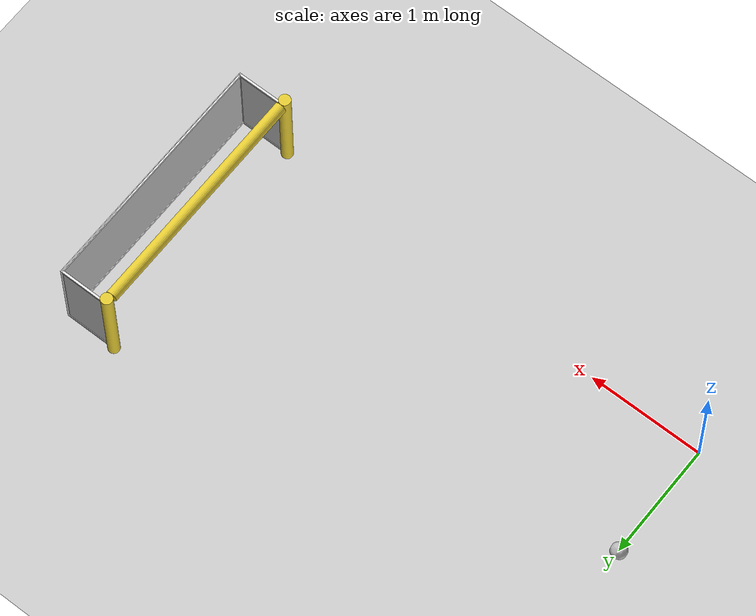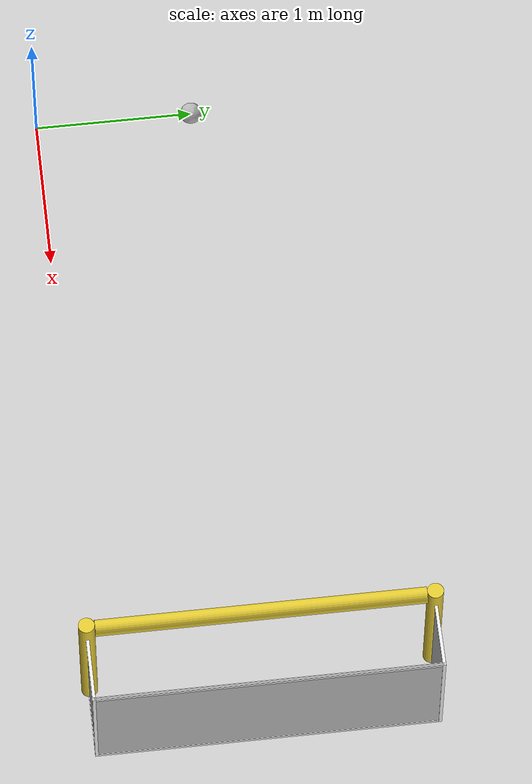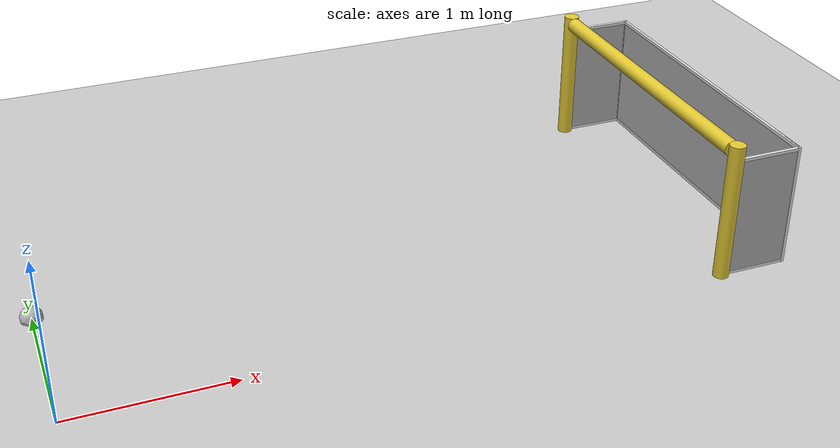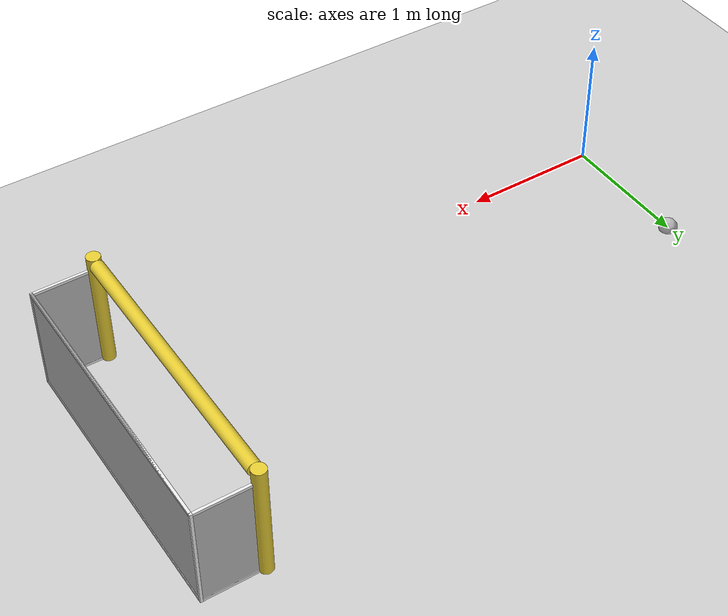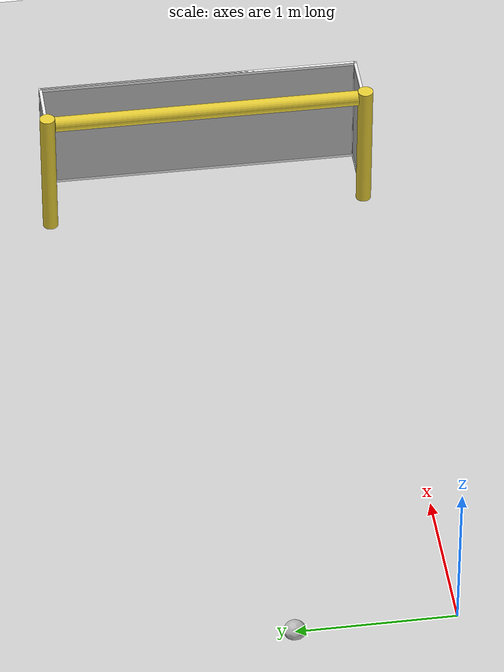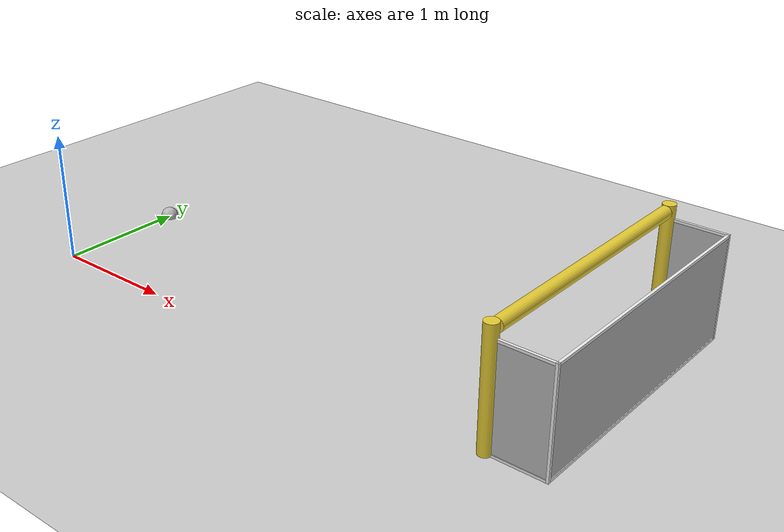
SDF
<sdf version="1.4">
 <world name="default">
  <model name="ground_plane">
   <static>1</static>
   <link name="link">
    <collision name="collision">
     <geometry><plane><normal>0 0 1</normal><size>100 100</size></plane></geometry>
     <surface><friction><ode><mu>100</mu><mu2>50</mu2></ode></friction></surface>
    </collision>
    <visual name="visual">
     <cast_shadows>0</cast_shadows>
     <geometry><plane><normal>0 0 1</normal><size>100 100</size></plane></geometry>
     <material>
      <script><uri>file://media/materials/scripts/gazebo.material</uri><name>Gazebo/Grey</name></script>
     </material>
    </visual>
    <velocity_decay><linear>0</linear><angular>0</angular></velocity_decay>
   </link>
  </model>
  <model name="RoboCup_3D_Simulator_Goal_1">
   <pose>4 1 0 0 -0 0</pose>
   <link name="left_post">
    <pose>0 1.05 0.45 0 -0 0</pose>
    <velocity_decay><linear>0</linear><angular>0</angular></velocity_decay>
    <visual name="visual">
     <geometry><cylinder><radius>0.05</radius><length>0.9</length></cylinder></geometry>
     <material>
      <script><uri>file://media/materials/scripts/gazebo.material</uri><name>Gazebo/ZincYellow</name></script>
      <shader type="pixel"/>
     </material>
    </visual>
    <collision name="collision">
     <geometry><cylinder><radius>0.05</radius><length>0.9</length></cylinder></geometry>
     <surface>
      <friction>
       <ode><mu>1</mu><mu2>1</mu2><fdir1>0 0 0</fdir1><slip1>0</slip1><slip2>0</slip2></ode>
       <torsional>
        <coefficient>1</coefficient>
        <patch_radius>0</patch_radius>
        <surface_radius>0</surface_radius>
        <use_patch_radius>1</use_patch_radius>
        <ode><slip>0</slip></ode>
       </torsional>
      </friction>
      <bounce><restitution_coefficient>0</restitution_coefficient><threshold>1e+06</threshold></bounce>
      <contact>
       <collide_without_contact>0</collide_without_contact>
       <collide_without_contact_bitmask>1</collide_without_contact_bitmask>
       <collide_bitmask>1</collide_bitmask>
       <ode>
        <soft_cfm>0</soft_cfm>
        <soft_erp>0.2</soft_erp>
        <kp>1e+13</kp>
        <kd>1</kd>
        <max_vel>0.01</max_vel>
        <min_depth>0</min_depth>
       </ode>
       <bullet>
        <split_impulse>1</split_impulse>
        <split_impulse_penetration_threshold>-0.01</split_impulse_penetration_threshold>
        <soft_cfm>0</soft_cfm>
        <soft_erp>0.2</soft_erp>
        <kp>1e+13</kp>
        <kd>1</kd>
       </bullet>
      </contact>
     </surface>
    </collision>
   </link>
   <link name="center_net">
    <pose>0.44 0 0.4 0 -0 0</pose>
    <velocity_decay><linear>0</linear><angular>0</angular></velocity_decay>
    <visual name="visual">
     <geometry><box><size>0.01 2.1 0.8</size></box></geometry>
     <material>
      <script>
       <uri>model://robocup09_spl_field/materials/scripts/</uri>
       <uri>model://robocup09_spl_field/materials/textures/</uri>
       <name>RoboCup/Net</name>
      </script>
      <shader type="pixel"/>
     </material>
    </visual>
    <collision name="collision">
     <geometry><box><size>0.01 2.1 0.8</size></box></geometry>
     <surface>
      <friction>
       <ode><mu>1</mu><mu2>1</mu2><fdir1>0 0 0</fdir1><slip1>0</slip1><slip2>0</slip2></ode>
       <torsional>
        <coefficient>1</coefficient>
        <patch_radius>0</patch_radius>
        <surface_radius>0</surface_radius>
        <use_patch_radius>1</use_patch_radius>
        <ode><slip>0</slip></ode>
       </torsional>
      </friction>
      <bounce><restitution_coefficient>0</restitution_coefficient><threshold>1e+06</threshold></bounce>
      <contact>
       <collide_without_contact>0</collide_without_contact>
       <collide_without_contact_bitmask>1</collide_without_contact_bitmask>
       <collide_bitmask>1</collide_bitmask>
       <ode>
        <soft_cfm>0</soft_cfm>
        <soft_erp>0.2</soft_erp>
        <kp>1e+13</kp>
        <kd>1</kd>
        <max_vel>0.01</max_vel>
        <min_depth>0</min_depth>
       </ode>
       <bullet>
        <split_impulse>1</split_impulse>
        <split_impulse_penetration_threshold>-0.01</split_impulse_penetration_threshold>
        <soft_cfm>0</soft_cfm>
        <soft_erp>0.2</soft_erp>
        <kp>1e+13</kp>
        <kd>1</kd>
       </bullet>
      </contact>
     </surface>
    </collision>
   </link>
   <link name="center_support_horiz_lower">
    <pose>0.44 0 0.01 3.14159 1.57079 3.14159</pose>
    <velocity_decay><linear>0</linear><angular>0</angular></velocity_decay>
    <visual name="visual">
     <geometry><box><size>0.02 2.08 0.02</size></box></geometry>
     <material>
      <script><uri>file://media/materials/scripts/gazebo.material</uri><name>Gazebo/White</name></script>
      <shader type="pixel"/>
     </material>
    </visual>
    <collision name="collision">
     <geometry><box><size>0.02 2.08 0.02</size></box></geometry>
     <surface>
      <friction>
       <ode><mu>1</mu><mu2>1</mu2><fdir1>0 0 0</fdir1><slip1>0</slip1><slip2>0</slip2></ode>
       <torsional>
        <coefficient>1</coefficient>
        <patch_radius>0</patch_radius>
        <surface_radius>0</surface_radius>
        <use_patch_radius>1</use_patch_radius>
        <ode><slip>0</slip></ode>
       </torsional>
      </friction>
      <bounce><restitution_coefficient>0</restitution_coefficient><threshold>1e+06</threshold></bounce>
      <contact>
       <collide_without_contact>0</collide_without_contact>
       <collide_without_contact_bitmask>1</collide_without_contact_bitmask>
       <collide_bitmask>1</collide_bitmask>
       <ode>
        <soft_cfm>0</soft_cfm>
        <soft_erp>0.2</soft_erp>
        <kp>1e+13</kp>
        <kd>1</kd>
        <max_vel>0.01</max_vel>
        <min_depth>0</min_depth>
       </ode>
       <bullet>
        <split_impulse>1</split_impulse>
        <split_impulse_penetration_threshold>-0.01</split_impulse_penetration_threshold>
        <soft_cfm>0</soft_cfm>
        <soft_erp>0.2</soft_erp>
        <kp>1e+13</kp>
        <kd>1</kd>
       </bullet>
      </contact>
     </surface>
    </collision>
   </link>
   <link name="center_support_horiz_upper">
    <pose>0.44 0 0.79 3.14159 1.57079 3.14159</pose>
    <velocity_decay><linear>0</linear><angular>0</angular></velocity_decay>
    <visual name="visual">
     <geometry><box><size>0.02 2.08 0.02</size></box></geometry>
     <material>
      <script><uri>file://media/materials/scripts/gazebo.material</uri><name>Gazebo/White</name></script>
      <shader type="pixel"/>
     </material>
    </visual>
    <collision name="collision">
     <geometry><box><size>0.02 2.08 0.02</size></box></geometry>
     <surface>
      <friction>
       <ode><mu>1</mu><mu2>1</mu2><fdir1>0 0 0</fdir1><slip1>0</slip1><slip2>0</slip2></ode>
       <torsional>
        <coefficient>1</coefficient>
        <patch_radius>0</patch_radius>
        <surface_radius>0</surface_radius>
        <use_patch_radius>1</use_patch_radius>
        <ode><slip>0</slip></ode>
       </torsional>
      </friction>
      <bounce><restitution_coefficient>0</restitution_coefficient><threshold>1e+06</threshold></bounce>
      <contact>
       <collide_without_contact>0</collide_without_contact>
       <collide_without_contact_bitmask>1</collide_without_contact_bitmask>
       <collide_bitmask>1</collide_bitmask>
       <ode>
        <soft_cfm>0</soft_cfm>
        <soft_erp>0.2</soft_erp>
        <kp>1e+13</kp>
        <kd>1</kd>
        <max_vel>0.01</max_vel>
        <min_depth>0</min_depth>
       </ode>
       <bullet>
        <split_impulse>1</split_impulse>
        <split_impulse_penetration_threshold>-0.01</split_impulse_penetration_threshold>
        <soft_cfm>0</soft_cfm>
        <soft_erp>0.2</soft_erp>
        <kp>1e+13</kp>
        <kd>1</kd>
       </bullet>
      </contact>
     </surface>
    </collision>
   </link>
   <link name="crossbar">
    <pose>0 0 0.85 1.57002 1.57 2.4e-05</pose>
    <velocity_decay><linear>0</linear><angular>0</angular></velocity_decay>
    <visual name="visual">
     <geometry><cylinder><radius>0.05</radius><length>2</length></cylinder></geometry>
     <material>
      <script><uri>file://media/materials/scripts/gazebo.material</uri><name>Gazebo/ZincYellow</name></script>
      <shader type="pixel"/>
     </material>
    </visual>
    <collision name="collision">
     <geometry><cylinder><radius>0.05</radius><length>2</length></cylinder></geometry>
     <surface>
      <friction>
       <ode><mu>1</mu><mu2>1</mu2><fdir1>0 0 0</fdir1><slip1>0</slip1><slip2>0</slip2></ode>
       <torsional>
        <coefficient>1</coefficient>
        <patch_radius>0</patch_radius>
        <surface_radius>0</surface_radius>
        <use_patch_radius>1</use_patch_radius>
        <ode><slip>0</slip></ode>
       </torsional>
      </friction>
      <bounce><restitution_coefficient>0</restitution_coefficient><threshold>1e+06</threshold></bounce>
      <contact>
       <collide_without_contact>0</collide_without_contact>
       <collide_without_contact_bitmask>1</collide_without_contact_bitmask>
       <collide_bitmask>1</collide_bitmask>
       <ode>
        <soft_cfm>0</soft_cfm>
        <soft_erp>0.2</soft_erp>
        <kp>1e+13</kp>
        <kd>1</kd>
        <max_vel>0.01</max_vel>
        <min_depth>0</min_depth>
       </ode>
       <bullet>
        <split_impulse>1</split_impulse>
        <split_impulse_penetration_threshold>-0.01</split_impulse_penetration_threshold>
        <soft_cfm>0</soft_cfm>
        <soft_erp>0.2</soft_erp>
        <kp>1e+13</kp>
        <kd>1</kd>
       </bullet>
      </contact>
     </surface>
    </collision>
   </link>
   <link name="left_net">
    <pose>0.24 1.05 0.4 0 -0 0</pose>
    <velocity_decay><linear>0</linear><angular>0</angular></velocity_decay>
    <visual name="visual">
     <geometry><box><size>0.38 0.01 0.76</size></box></geometry>
     <material>
      <script>
       <uri>model://robocup09_spl_field/materials/scripts/</uri>
       <uri>model://robocup09_spl_field/materials/textures/</uri>
       <name>RoboCup/Net</name>
      </script>
      <shader type="pixel"/>
     </material>
    </visual>
    <collision name="collision">
     <geometry><box><size>0.38 0.01 0.76</size></box></geometry>
     <surface>
      <friction>
       <ode><mu>1</mu><mu2>1</mu2><fdir1>0 0 0</fdir1><slip1>0</slip1><slip2>0</slip2></ode>
       <torsional>
        <coefficient>1</coefficient>
        <patch_radius>0</patch_radius>
        <surface_radius>0</surface_radius>
        <use_patch_radius>1</use_patch_radius>
        <ode><slip>0</slip></ode>
       </torsional>
      </friction>
      <bounce><restitution_coefficient>0</restitution_coefficient><threshold>1e+06</threshold></bounce>
      <contact>
       <collide_without_contact>0</collide_without_contact>
       <collide_without_contact_bitmask>1</collide_without_contact_bitmask>
       <collide_bitmask>1</collide_bitmask>
       <ode>
        <soft_cfm>0</soft_cfm>
        <soft_erp>0.2</soft_erp>
        <kp>1e+13</kp>
        <kd>1</kd>
        <max_vel>0.01</max_vel>
        <min_depth>0</min_depth>
       </ode>
       <bullet>
        <split_impulse>1</split_impulse>
        <split_impulse_penetration_threshold>-0.01</split_impulse_penetration_threshold>
        <soft_cfm>0</soft_cfm>
        <soft_erp>0.2</soft_erp>
        <kp>1e+13</kp>
        <kd>1</kd>
       </bullet>
      </contact>
     </surface>
    </collision>
   </link>
   <link name="left_support_horiz_lower">
    <pose>0.24 1.05 0.01 0 -0 0</pose>
    <velocity_decay><linear>0</linear><angular>0</angular></velocity_decay>
    <visual name="visual">
     <geometry><box><size>0.38 0.02 0.02</size></box></geometry>
     <material>
      <script><uri>file://media/materials/scripts/gazebo.material</uri><name>Gazebo/White</name></script>
      <shader type="pixel"/>
     </material>
    </visual>
    <collision name="collision">
     <geometry><box><size>0.38 0.02 0.02</size></box></geometry>
     <surface>
      <friction>
       <ode><mu>1</mu><mu2>1</mu2><fdir1>0 0 0</fdir1><slip1>0</slip1><slip2>0</slip2></ode>
       <torsional>
        <coefficient>1</coefficient>
        <patch_radius>0</patch_radius>
        <surface_radius>0</surface_radius>
        <use_patch_radius>1</use_patch_radius>
        <ode><slip>0</slip></ode>
       </torsional>
      </friction>
      <bounce><restitution_coefficient>0</restitution_coefficient><threshold>1e+06</threshold></bounce>
      <contact>
       <collide_without_contact>0</collide_without_contact>
       <collide_without_contact_bitmask>1</collide_without_contact_bitmask>
       <collide_bitmask>1</collide_bitmask>
       <ode>
        <soft_cfm>0</soft_cfm>
        <soft_erp>0.2</soft_erp>
        <kp>1e+13</kp>
        <kd>1</kd>
        <max_vel>0.01</max_vel>
        <min_depth>0</min_depth>
       </ode>
       <bullet>
        <split_impulse>1</split_impulse>
        <split_impulse_penetration_threshold>-0.01</split_impulse_penetration_threshold>
        <soft_cfm>0</soft_cfm>
        <soft_erp>0.2</soft_erp>
        <kp>1e+13</kp>
        <kd>1</kd>
       </bullet>
      </contact>
     </surface>
    </collision>
   </link>
   <link name="left_support_horiz_upper">
    <pose>0.24 1.05 0.79 0 -0 0</pose>
    <velocity_decay><linear>0</linear><angular>0</angular></velocity_decay>
    <visual name="visual">
     <geometry><box><size>0.38 0.02 0.02</size></box></geometry>
     <material>
      <script><uri>file://media/materials/scripts/gazebo.material</uri><name>Gazebo/White</name></script>
      <shader type="pixel"/>
     </material>
    </visual>
    <collision name="collision">
     <geometry><box><size>0.38 0.02 0.02</size></box></geometry>
     <surface>
      <friction>
       <ode><mu>1</mu><mu2>1</mu2><fdir1>0 0 0</fdir1><slip1>0</slip1><slip2>0</slip2></ode>
       <torsional>
        <coefficient>1</coefficient>
        <patch_radius>0</patch_radius>
        <surface_radius>0</surface_radius>
        <use_patch_radius>1</use_patch_radius>
        <ode><slip>0</slip></ode>
       </torsional>
      </friction>
      <bounce><restitution_coefficient>0</restitution_coefficient><threshold>1e+06</threshold></bounce>
      <contact>
       <collide_without_contact>0</collide_without_contact>
       <collide_without_contact_bitmask>1</collide_without_contact_bitmask>
       <collide_bitmask>1</collide_bitmask>
       <ode>
        <soft_cfm>0</soft_cfm>
        <soft_erp>0.2</soft_erp>
        <kp>1e+13</kp>
        <kd>1</kd>
        <max_vel>0.01</max_vel>
        <min_depth>0</min_depth>
       </ode>
       <bullet>
        <split_impulse>1</split_impulse>
        <split_impulse_penetration_threshold>-0.01</split_impulse_penetration_threshold>
        <soft_cfm>0</soft_cfm>
        <soft_erp>0.2</soft_erp>
        <kp>1e+13</kp>
        <kd>1</kd>
       </bullet>
      </contact>
     </surface>
    </collision>
   </link>
   <link name="left_support_vertical">
    <pose>0.44 1.05 0.4 3.14159 1.57079 3.14159</pose>
    <velocity_decay><linear>0</linear><angular>0</angular></velocity_decay>
    <visual name="visual">
     <geometry><box><size>0.8 0.02 0.02</size></box></geometry>
     <material>
      <script><uri>file://media/materials/scripts/gazebo.material</uri><name>Gazebo/White</name></script>
      <shader type="pixel"/>
     </material>
    </visual>
    <collision name="collision">
     <geometry><box><size>0.8 0.02 0.02</size></box></geometry>
     <surface>
      <friction>
       <ode><mu>1</mu><mu2>1</mu2><fdir1>0 0 0</fdir1><slip1>0</slip1><slip2>0</slip2></ode>
       <torsional>
        <coefficient>1</coefficient>
        <patch_radius>0</patch_radius>
        <surface_radius>0</surface_radius>
        <use_patch_radius>1</use_patch_radius>
        <ode><slip>0</slip></ode>
       </torsional>
      </friction>
      <bounce><restitution_coefficient>0</restitution_coefficient><threshold>1e+06</threshold></bounce>
      <contact>
       <collide_without_contact>0</collide_without_contact>
       <collide_without_contact_bitmask>1</collide_without_contact_bitmask>
       <collide_bitmask>1</collide_bitmask>
       <ode>
        <soft_cfm>0</soft_cfm>
        <soft_erp>0.2</soft_erp>
        <kp>1e+13</kp>
        <kd>1</kd>
        <max_vel>0.01</max_vel>
        <min_depth>0</min_depth>
       </ode>
       <bullet>
        <split_impulse>1</split_impulse>
        <split_impulse_penetration_threshold>-0.01</split_impulse_penetration_threshold>
        <soft_cfm>0</soft_cfm>
        <soft_erp>0.2</soft_erp>
        <kp>1e+13</kp>
        <kd>1</kd>
       </bullet>
      </contact>
     </surface>
    </collision>
   </link>
   <link name="right_net">
    <pose>0.24 -1.05 0.4 0 -0 0</pose>
    <velocity_decay><linear>0</linear><angular>0</angular></velocity_decay>
    <visual name="visual">
     <geometry><box><size>0.38 0.01 0.76</size></box></geometry>
     <material>
      <script>
       <uri>model://robocup09_spl_field/materials/scripts/</uri>
       <uri>model://robocup09_spl_field/materials/textures/</uri>
       <name>RoboCup/Net</name>
      </script>
      <shader type="pixel"/>
     </material>
    </visual>
    <collision name="collision">
     <geometry><box><size>0.38 0.01 0.76</size></box></geometry>
     <surface>
      <friction>
       <ode><mu>1</mu><mu2>1</mu2><fdir1>0 0 0</fdir1><slip1>0</slip1><slip2>0</slip2></ode>
       <torsional>
        <coefficient>1</coefficient>
        <patch_radius>0</patch_radius>
        <surface_radius>0</surface_radius>
        <use_patch_radius>1</use_patch_radius>
        <ode><slip>0</slip></ode>
       </torsional>
      </friction>
      <bounce><restitution_coefficient>0</restitution_coefficient><threshold>1e+06</threshold></bounce>
      <contact>
       <collide_without_contact>0</collide_without_contact>
       <collide_without_contact_bitmask>1</collide_without_contact_bitmask>
       <collide_bitmask>1</collide_bitmask>
       <ode>
        <soft_cfm>0</soft_cfm>
        <soft_erp>0.2</soft_erp>
        <kp>1e+13</kp>
        <kd>1</kd>
        <max_vel>0.01</max_vel>
        <min_depth>0</min_depth>
       </ode>
       <bullet>
        <split_impulse>1</split_impulse>
        <split_impulse_penetration_threshold>-0.01</split_impulse_penetration_threshold>
        <soft_cfm>0</soft_cfm>
        <soft_erp>0.2</soft_erp>
        <kp>1e+13</kp>
        <kd>1</kd>
       </bullet>
      </contact>
     </surface>
    </collision>
   </link>
   <link name="right_post">
    <pose>0 -1.05 0.45 0 -0 0</pose>
    <velocity_decay><linear>0</linear><angular>0</angular></velocity_decay>
    <visual name="visual">
     <geometry><cylinder><radius>0.05</radius><length>0.9</length></cylinder></geometry>
     <material>
      <script><uri>file://media/materials/scripts/gazebo.material</uri><name>Gazebo/ZincYellow</name></script>
      <shader type="pixel"/>
     </material>
    </visual>
    <collision name="collision">
     <geometry><cylinder><radius>0.05</radius><length>0.9</length></cylinder></geometry>
     <surface>
      <friction>
       <ode><mu>1</mu><mu2>1</mu2><fdir1>0 0 0</fdir1><slip1>0</slip1><slip2>0</slip2></ode>
       <torsional>
        <coefficient>1</coefficient>
        <patch_radius>0</patch_radius>
        <surface_radius>0</surface_radius>
        <use_patch_radius>1</use_patch_radius>
        <ode><slip>0</slip></ode>
       </torsional>
      </friction>
      <bounce><restitution_coefficient>0</restitution_coefficient><threshold>1e+06</threshold></bounce>
      <contact>
       <collide_without_contact>0</collide_without_contact>
       <collide_without_contact_bitmask>1</collide_without_contact_bitmask>
       <collide_bitmask>1</collide_bitmask>
       <ode>
        <soft_cfm>0</soft_cfm>
        <soft_erp>0.2</soft_erp>
        <kp>1e+13</kp>
        <kd>1</kd>
        <max_vel>0.01</max_vel>
        <min_depth>0</min_depth>
       </ode>
       <bullet>
        <split_impulse>1</split_impulse>
        <split_impulse_penetration_threshold>-0.01</split_impulse_penetration_threshold>
        <soft_cfm>0</soft_cfm>
        <soft_erp>0.2</soft_erp>
        <kp>1e+13</kp>
        <kd>1</kd>
       </bullet>
      </contact>
     </surface>
    </collision>
   </link>
   <link name="right_support_horiz_lower">
    <pose>0.24 -1.05 0.01 0 -0 0</pose>
    <velocity_decay><linear>0</linear><angular>0</angular></velocity_decay>
    <visual name="visual">
     <geometry><box><size>0.38 0.02 0.02</size></box></geometry>
     <material>
      <script><uri>file://media/materials/scripts/gazebo.material</uri><name>Gazebo/White</name></script>
      <shader type="pixel"/>
     </material>
    </visual>
    <collision name="collision">
     <geometry><box><size>0.38 0.02 0.02</size></box></geometry>
     <surface>
      <friction>
       <ode><mu>1</mu><mu2>1</mu2><fdir1>0 0 0</fdir1><slip1>0</slip1><slip2>0</slip2></ode>
       <torsional>
        <coefficient>1</coefficient>
        <patch_radius>0</patch_radius>
        <surface_radius>0</surface_radius>
        <use_patch_radius>1</use_patch_radius>
        <ode><slip>0</slip></ode>
       </torsional>
      </friction>
      <bounce><restitution_coefficient>0</restitution_coefficient><threshold>1e+06</threshold></bounce>
      <contact>
       <collide_without_contact>0</collide_without_contact>
       <collide_without_contact_bitmask>1</collide_without_contact_bitmask>
       <collide_bitmask>1</collide_bitmask>
       <ode>
        <soft_cfm>0</soft_cfm>
        <soft_erp>0.2</soft_erp>
        <kp>1e+13</kp>
        <kd>1</kd>
        <max_vel>0.01</max_vel>
        <min_depth>0</min_depth>
       </ode>
       <bullet>
        <split_impulse>1</split_impulse>
        <split_impulse_penetration_threshold>-0.01</split_impulse_penetration_threshold>
        <soft_cfm>0</soft_cfm>
        <soft_erp>0.2</soft_erp>
        <kp>1e+13</kp>
        <kd>1</kd>
       </bullet>
      </contact>
     </surface>
    </collision>
   </link>
   <link name="right_support_horiz_upper">
    <pose>0.24 -1.05 0.79 0 -0 0</pose>
    <velocity_decay><linear>0</linear><angular>0</angular></velocity_decay>
    <visual name="visual">
     <geometry><box><size>0.38 0.02 0.02</size></box></geometry>
     <material>
      <script><uri>file://media/materials/scripts/gazebo.material</uri><name>Gazebo/White</name></script>
      <shader type="pixel"/>
     </material>
    </visual>
    <collision name="collision">
     <geometry><box><size>0.38 0.02 0.02</size></box></geometry>
     <surface>
      <friction>
       <ode><mu>1</mu><mu2>1</mu2><fdir1>0 0 0</fdir1><slip1>0</slip1><slip2>0</slip2></ode>
       <torsional>
        <coefficient>1</coefficient>
        <patch_radius>0</patch_radius>
        <surface_radius>0</surface_radius>
        <use_patch_radius>1</use_patch_radius>
        <ode><slip>0</slip></ode>
       </torsional>
      </friction>
      <bounce><restitution_coefficient>0</restitution_coefficient><threshold>1e+06</threshold></bounce>
      <contact>
       <collide_without_contact>0</collide_without_contact>
       <collide_without_contact_bitmask>1</collide_without_contact_bitmask>
       <collide_bitmask>1</collide_bitmask>
       <ode>
        <soft_cfm>0</soft_cfm>
        <soft_erp>0.2</soft_erp>
        <kp>1e+13</kp>
        <kd>1</kd>
        <max_vel>0.01</max_vel>
        <min_depth>0</min_depth>
       </ode>
       <bullet>
        <split_impulse>1</split_impulse>
        <split_impulse_penetration_threshold>-0.01</split_impulse_penetration_threshold>
        <soft_cfm>0</soft_cfm>
        <soft_erp>0.2</soft_erp>
        <kp>1e+13</kp>
        <kd>1</kd>
       </bullet>
      </contact>
     </surface>
    </collision>
   </link>
   <link name="right_support_vertical">
    <pose>0.44 -1.05 0.4 3.14159 1.57079 3.14159</pose>
    <velocity_decay><linear>0</linear><angular>0</angular></velocity_decay>
    <visual name="visual">
     <geometry><box><size>0.8 0.02 0.02</size></box></geometry>
     <material>
      <script><uri>file://media/materials/scripts/gazebo.material</uri><name>Gazebo/White</name></script>
      <shader type="pixel"/>
     </material>
    </visual>
    <collision name="collision">
     <geometry><box><size>0.8 0.02 0.02</size></box></geometry>
     <surface>
      <friction>
       <ode><mu>1</mu><mu2>1</mu2><fdir1>0 0 0</fdir1><slip1>0</slip1><slip2>0</slip2></ode>
       <torsional>
        <coefficient>1</coefficient>
        <patch_radius>0</patch_radius>
        <surface_radius>0</surface_radius>
        <use_patch_radius>1</use_patch_radius>
        <ode><slip>0</slip></ode>
       </torsional>
      </friction>
      <bounce><restitution_coefficient>0</restitution_coefficient><threshold>1e+06</threshold></bounce>
      <contact>
       <collide_without_contact>0</collide_without_contact>
       <collide_without_contact_bitmask>1</collide_without_contact_bitmask>
       <collide_bitmask>1</collide_bitmask>
       <ode>
        <soft_cfm>0</soft_cfm>
        <soft_erp>0.2</soft_erp>
        <kp>1e+13</kp>
        <kd>1</kd>
        <max_vel>0.01</max_vel>
        <min_depth>0</min_depth>
       </ode>
       <bullet>
        <split_impulse>1</split_impulse>
        <split_impulse_penetration_threshold>-0.01</split_impulse_penetration_threshold>
        <soft_cfm>0</soft_cfm>
        <soft_erp>0.2</soft_erp>
        <kp>1e+13</kp>
        <kd>1</kd>
       </bullet>
      </contact>
     </surface>
    </collision>
   </link>
   <static>1</static>
  </model>
  <model name="transparent_wall_2">
   <pose>-0.7 4.1 0 0 0 0</pose>
   <link name="link">
    <pose>0.726588 0 0.294861 0 -0 0</pose>
    <inertial>
     <inertia><ixx>0</ixx><ixy>0</ixy><ixz>0</ixz><iyy>0</iyy><iyz>0</iyz><izz>0</izz></inertia>
     <mass>0</mass>
    </inertial>
    <visual name="visual">
     <cast_shadows>0</cast_shadows>
     <geometry><box><size>9.33092 0.2 1.33014</size></box></geometry>
     <material>
      <script>
       <uri>model://grey_wall/materials/scripts</uri>
       <uri>model://grey_wall/materials/textures</uri>
       <name>vrc/grey_wall</name>
      </script>
      <shader type="pixel"><normal_map>__default__</normal_map></shader>
      <ambient>1 1 1 1</ambient>
      <diffuse>1 1 1 1</diffuse>
      <specular>0 0 0 1</specular>
      <emissive>0 0 0 1</emissive>
     </material>
     <transparency>1</transparency>
    </visual>
    <collision name="collision">
     <geometry><box><size>9.33092 0.2 1.33014</size></box></geometry>
     <surface>
      <friction>
       <ode><mu>1</mu><mu2>1</mu2><fdir1>0 0 0</fdir1><slip1>0</slip1><slip2>0</slip2></ode>
       <torsional>
        <coefficient>1</coefficient>
        <patch_radius>0</patch_radius>
        <surface_radius>0</surface_radius>
        <use_patch_radius>1</use_patch_radius>
        <ode><slip>0</slip></ode>
       </torsional>
      </friction>
      <bounce><restitution_coefficient>0</restitution_coefficient><threshold>1e+06</threshold></bounce>
      <contact>
       <collide_without_contact>0</collide_without_contact>
       <collide_without_contact_bitmask>1</collide_without_contact_bitmask>
       <collide_bitmask>1</collide_bitmask>
       <ode>
        <soft_cfm>0</soft_cfm>
        <soft_erp>0.2</soft_erp>
        <kp>1e+13</kp>
        <kd>1</kd>
        <max_vel>0.01</max_vel>
        <min_depth>0</min_depth>
       </ode>
       <bullet>
        <split_impulse>1</split_impulse>
        <split_impulse_penetration_threshold>-0.01</split_impulse_penetration_threshold>
        <soft_cfm>0</soft_cfm>
        <soft_erp>0.2</soft_erp>
        <kp>1e+13</kp>
        <kd>1</kd>
       </bullet>
      </contact>
     </surface>
    </collision>
   </link>
   <static>1</static>
  </model>
  <model name="transparent_wall_3">
   <pose>4.36 1.903 0 0 0 -1.571</pose>
   <link name="link">
    <pose>0.902856 0.250316 0.294861 0 -0 0</pose>
    <inertial>
     <inertia><ixx>0</ixx><ixy>0</ixy><ixz>0</ixz><iyy>0</iyy><iyz>0</iyz><izz>0</izz></inertia>
     <mass>0</mass>
    </inertial>
    <visual name="visual">
     <cast_shadows>0</cast_shadows>
     <geometry><box><size>6.48253 0.2 1.33014</size></box></geometry>
     <material>
      <script>
       <uri>model://grey_wall/materials/scripts</uri>
       <uri>model://grey_wall/materials/textures</uri>
       <name>vrc/grey_wall</name>
      </script>
      <shader type="pixel"><normal_map>__default__</normal_map></shader>
      <ambient>1 1 1 1</ambient>
      <diffuse>1 1 1 1</diffuse>
      <specular>0 0 0 1</specular>
      <emissive>0 0 0 1</emissive>
     </material>
     <transparency>1</transparency>
    </visual>
    <collision name="collision">
     <geometry><box><size>6.48253 0.2 1.33014</size></box></geometry>
     <surface>
      <friction>
       <ode><mu>1</mu><mu2>1</mu2><fdir1>0 0 0</fdir1><slip1>0</slip1><slip2>0</slip2></ode>
       <torsional>
        <coefficient>1</coefficient>
        <patch_radius>0</patch_radius>
        <surface_radius>0</surface_radius>
        <use_patch_radius>1</use_patch_radius>
        <ode><slip>0</slip></ode>
       </torsional>
      </friction>
      <bounce><restitution_coefficient>0</restitution_coefficient><threshold>1e+06</threshold></bounce>
      <contact>
       <collide_without_contact>0</collide_without_contact>
       <collide_without_contact_bitmask>1</collide_without_contact_bitmask>
       <collide_bitmask>1</collide_bitmask>
       <ode>
        <soft_cfm>0</soft_cfm>
        <soft_erp>0.2</soft_erp>
        <kp>1e+13</kp>
        <kd>1</kd>
        <max_vel>0.01</max_vel>
        <min_depth>0</min_depth>
       </ode>
       <bullet>
        <split_impulse>1</split_impulse>
        <split_impulse_penetration_threshold>-0.01</split_impulse_penetration_threshold>
        <soft_cfm>0</soft_cfm>
        <soft_erp>0.2</soft_erp>
        <kp>1e+13</kp>
        <kd>1</kd>
       </bullet>
      </contact>
     </surface>
    </collision>
   </link>
   <static>1</static>
  </model>
  <model name="football">
   <static>0</static>
   <pose>0 1 0.01 0 -0 0</pose>
   <link name="link">
    <inertial>
     <mass>0.41</mass>
     <inertia><ixx>3.2e-03</ixx><iyy>3.2e-03</iyy><izz>3.2e-03</izz><ixy>0</ixy><ixz>0</ixz><iyz>0</iyz></inertia>
    </inertial>
    <collision name="collision">
     <geometry><sphere><radius>0.07</radius></sphere></geometry>
     <surface>
      <bounce><restitution_coefficient>0.05</restitution_coefficient><threshold>10</threshold></bounce>
      <friction>
       <torsional>
        <coefficient>1.0</coefficient>
        <use_patch_radius>true</use_patch_radius>
        <patch_radius>0.05</patch_radius>
       </torsional>
       <ode><mu>1</mu><mu2>1</mu2></ode>
      </friction>
      <contact><ode><max_vel>5</max_vel></ode></contact>
     </surface>
    </collision>
    <visual name="visual">
     <geometry>
      <mesh><scale>0.07 0.07 0.07</scale><uri>model://robocup_3Dsim_ball/meshes/ball.dae</uri></mesh>
     </geometry>
    </visual>
    <sensor name="contact" type="contact">
     <plugin name="contact" filename="libgazebo_ros_bumper.so">
      <robotNamespace>football</robotNamespace>
      <frameName>world</frameName>
     </plugin>
     <contact><collision>collision</collision></contact>
    </sensor>
   </link>
   <plugin name="ball_gazebo" filename="libball_gazebo.so"/>
  </model>
 </world>
</sdf>
